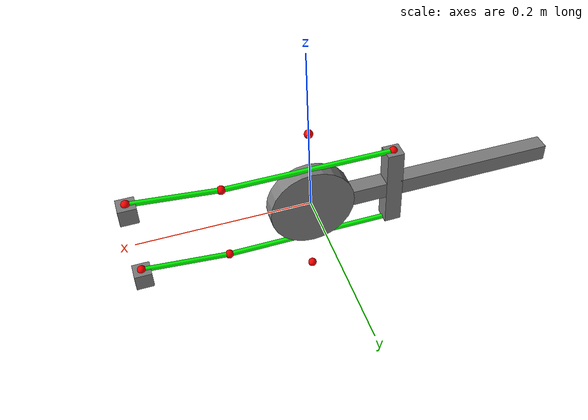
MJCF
<mujoco>
  <compiler autolimits="true"/>

  <default>
    <site type="sphere" rgba="1 0 0 1" size="0.005"/>
    <tendon rgba="0 1 0 1"/>
  </default>

  <visual>
    <headlight diffuse=".7 .7 .7"/>
  </visual>

  <worldbody>
    <body name="arm">
      <joint name="arm" axis="0 1 0" range="-120 120" damping=".04"/>
      <geom name="shoulder" type="cylinder" size=".05 .01" zaxis="0 1 0"/>
      <geom name="arm" type="box" size=".01" fromto="0 0 0 -.3 0 0"/>
      <geom name="crossbar" type="box" size=".01" fromto="-.1 0 -.05 -.1 0 .05"/>
      <site name="arm" pos="-.1 0 .05"/>
      <site name="arm_d" pos="-.1 0 -.05"/>
    </body>
    <site name="up" pos="0 0 .1"/>
    <site name="relay_u" pos=".1 0 .05"/>
    <body name="slider_u" pos=".2 0 .05">
      <joint name="slider_u" axis="-1 0 0" type="slide" damping=".1" range="-1. .1"/>
      <geom name="slider_u" type="box" size=".01 .01 .01"/>
      <site name="slider_u" pos="0 0 .01"/>
    </body>
    <site name="down" pos="0 0 -.1"/>
    <site name="relay_d" pos=".1 0 -.05"/>
    <body name="slider_d" pos=".2 0 -.05">
      <joint name="slider_d" axis="-1 0 0" type="slide" damping=".1" range="-1. .1"/>
      <geom name="slider_d" type="box" size=".01 .01 .01"/>
      <site name="slider_d" pos="0 0 .01"/>
    </body>
  </worldbody>

  <tendon>
    <spatial name="rope_u" range="0 .35">
      <site site="slider_u"/>
      <site site="relay_u"/>
      <geom geom="shoulder" sidesite="up"/>
      <site site="arm"/>
    </spatial>
    <spatial name="rope_d" range="0 .35">
      <site site="slider_d"/>
      <site site="relay_d"/>
      <geom geom="shoulder" sidesite="down"/>
      <site site="arm_d"/>
    </spatial>
  </tendon>

  <actuator>
    <motor name="slider_u" joint="slider_u" ctrlrange="-10. 0."/>
    <motor name="slider_d" joint="slider_d" ctrlrange="-10. 0."/>
  </actuator>

  <sensor>
    <tendonlimitfrc tendon="rope_u"/>
    <tendonlimitfrc tendon="rope_d"/>
  </sensor>
</mujoco>
